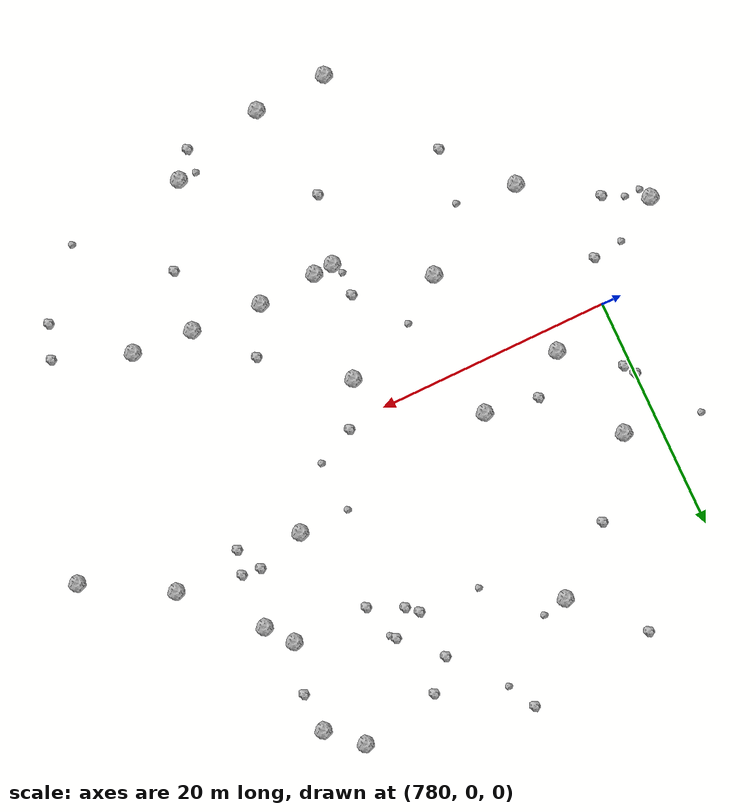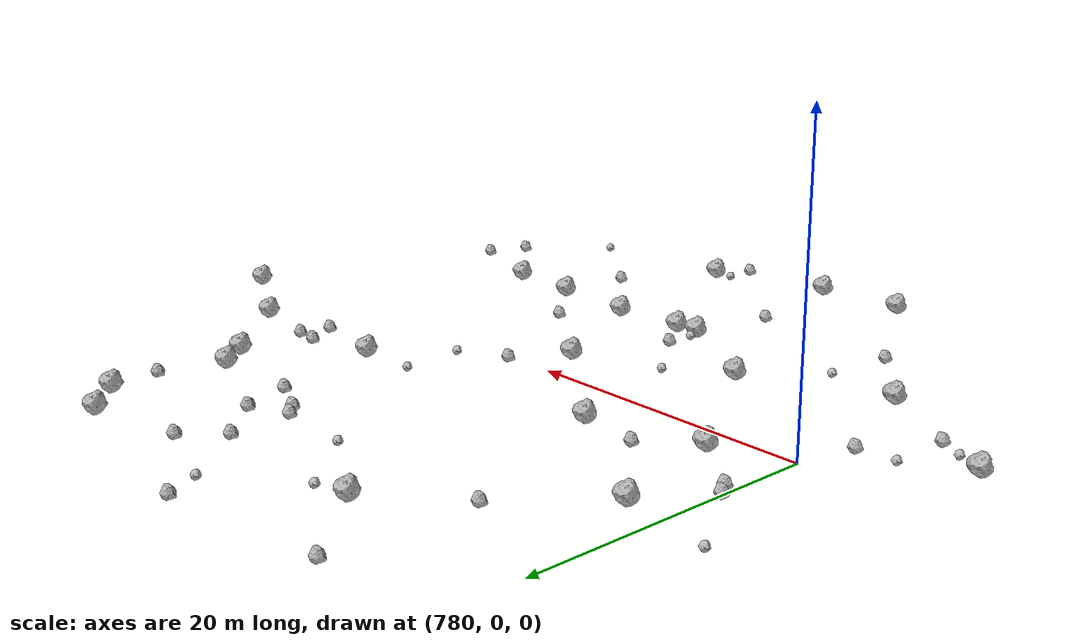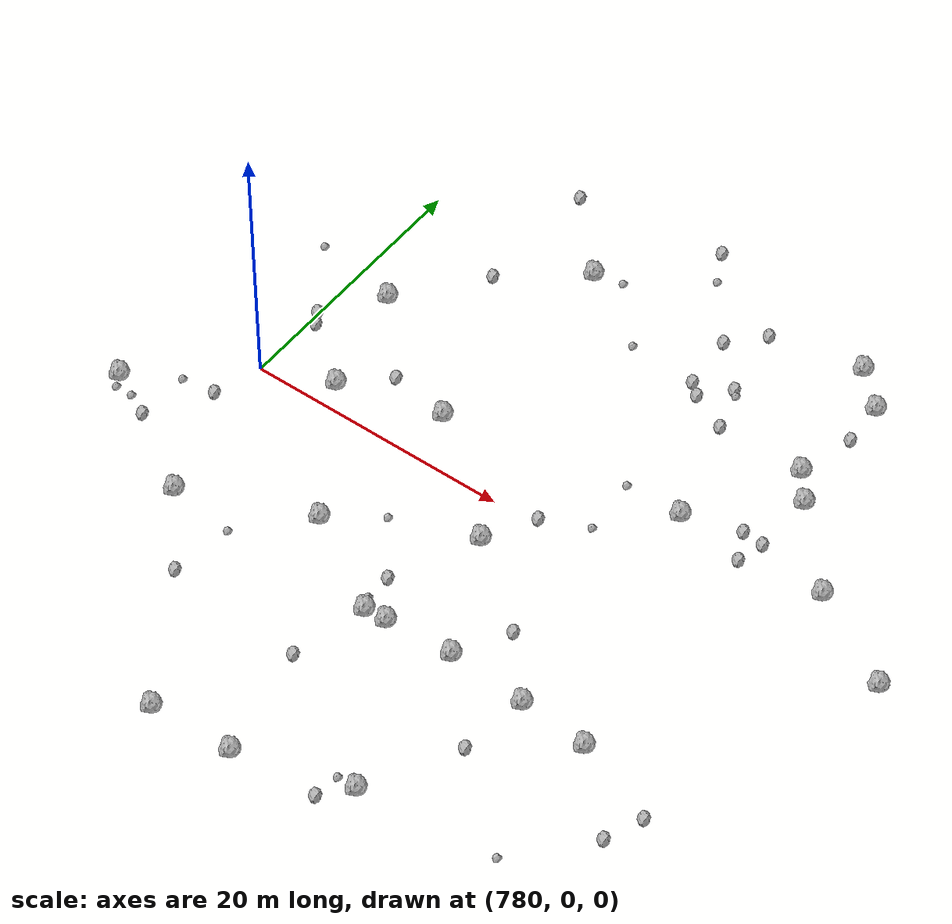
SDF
<sdf version="1.6">
 <world name="default">
  <include><uri>model://sun</uri></include>
  <model name="rock1_20_4">
   <include><uri>model://rock1</uri><pose>801.2873072578556 -3.220951974820391 0.5 0 0 0</pose></include>
  </model>
  <model name="rock1_20_5">
   <include><uri>model://rock1</uri><pose>791.5857558308367 -8.156752946767178 0.5 0 0 0</pose></include>
  </model>
  <model name="rock1_20_6">
   <include><uri>model://rock1</uri><pose>800.4947093989882 -12.434052844356128 0.5 0 0 0</pose></include>
  </model>
  <model name="rock1_20_7">
   <include><uri>model://rock1</uri><pose>805.5798699780303 -12.102232864221431 0.5 0 0 0</pose></include>
  </model>
  <model name="rock1_20_8">
   <include><uri>model://rock1</uri><pose>792.7626805686768 -26.941547479503143 0.5 0 0 0</pose></include>
  </model>
  <model name="rock1_20_9">
   <include><uri>model://rock1</uri><pose>793.1831807903321 20.65994147898806 0.5 0 0 0</pose></include>
  </model>
  <model name="rock1_20_10">
   <include><uri>model://rock1</uri><pose>782.2896090351219 -12.054138161043085 0.5 0 0 0</pose></include>
  </model>
  <model name="rock1_20_11">
   <include><uri>model://rock1</uri><pose>772.7097761068911 -6.355867970322969 0.5 0 0 0</pose></include>
  </model>
  <model name="rock1_20_12">
   <include><uri>model://rock1</uri><pose>785.0836750338036 1.8567389888149428 0.5 0 0 0</pose></include>
  </model>
  <model name="rock1_20_13">
   <include><uri>model://rock1</uri><pose>816.6455876822916 12.210533406958668 0.5 0 0 0</pose></include>
  </model>
  <model name="rock1_20_14">
   <include><uri>model://rock1</uri><pose>811.5968163612755 -12.513613989533695 0.5 0 0 0</pose></include>
  </model>
  <model name="rock1_20_15">
   <include><uri>model://rock1</uri><pose>829.0964557578304 2.3667277953648878 0.5 0 0 0</pose></include>
  </model>
  <model name="rock1_20_16">
   <include><uri>model://rock1</uri><pose>807.2863558496017 -24.22560367217298 0.5 0 0 0</pose></include>
  </model>
  <model name="rock1_20_17">
   <include><uri>model://rock1</uri><pose>810.659254233874 6.3888685827005744 0.5 0 0 0</pose></include>
  </model>
  <model name="rock1_20_18">
   <include><uri>model://rock1</uri><pose>782.9826528462528 10.333750544513599 0.5 0 0 0</pose></include>
  </model>
  <model name="rock1_20_19">
   <include><uri>model://rock1</uri><pose>816.8165728193012 -12.916499489677044 0.5 0 0 0</pose></include>
  </model>
  <model name="rock1_20_20">
   <include><uri>model://rock1</uri><pose>821.9831320202345 6.449855241724265 0.5 0 0 0</pose></include>
  </model>
  <model name="rock1_20_21">
   <include><uri>model://rock1</uri><pose>813.2185242906169 24.490597600129306 0.5 0 0 0</pose></include>
  </model>
  <model name="rock1_20_22">
   <include><uri>model://rock1</uri><pose>798.8093887175354 -12.538822701193503 0.5 0 0 0</pose></include>
  </model>
  <model name="rock1_20_23">
   <include><uri>model://rock1</uri><pose>799.0342927907318 -26.67465299741448 0.5 0 0 0</pose></include>
  </model>
  <model name="rock1_20_24">
   <include><uri>model://rock1</uri><pose>792.6673132915784 3.93650280036492 0.5 0 0 0</pose></include>
  </model>
  <model name="rock1_20_25">
   <include><uri>model://rock1</uri><pose>815.8923599474474 21.98751811751643 0.5 0 0 0</pose></include>
  </model>
  <model name="rock1_20_26">
   <include><uri>model://rock1</uri><pose>814.949751332376 14.355462906832024 0.5 0 0 0</pose></include>
  </model>
  <model name="rock2_20_0">
   <include><uri>model://rock2</uri><pose>788.0728786082996 26.085139016016228 0.3 0 0 0</pose></include>
  </model>
  <model name="rock2_20_1">
   <include><uri>model://rock2</uri><pose>805.4460139626715 15.70038718153819 0.3 0 0 0</pose></include>
  </model>
  <model name="rock2_20_2">
   <include><uri>model://rock2</uri><pose>815.9567593522086 5.496034657066367 0.3 0 0 0</pose></include>
  </model>
  <model name="rock2_20_3">
   <include><uri>model://rock2</uri><pose>787.6806756451637 16.267240835570618 0.3 0 0 0</pose></include>
  </model>
  <model name="rock2_20_4">
   <include><uri>model://rock2</uri><pose>778.9788581164527 -3.7709069475918717 0.3 0 0 0</pose></include>
  </model>
  <model name="rock2_20_5">
   <include><uri>model://rock2</uri><pose>804.139772813452 20.78804500453326 0.3 0 0 0</pose></include>
  </model>
  <model name="rock2_20_6">
   <include><uri>model://rock2</uri><pose>816.065424968218 18.640816951671944 0.3 0 0 0</pose></include>
  </model>
  <model name="rock2_20_7">
   <include><uri>model://rock2</uri><pose>799.2353249929297 27.65173345118062 0.3 0 0 0</pose></include>
  </model>
  <model name="rock2_20_8">
   <include><uri>model://rock2</uri><pose>807.7127400621159 -8.230429578204742 0.3 0 0 0</pose></include>
  </model>
  <model name="rock2_20_9">
   <include><uri>model://rock2</uri><pose>776.2625985832191 -8.169659329430026 0.3 0 0 0</pose></include>
  </model>
  <model name="rock2_20_10">
   <include><uri>model://rock2</uri><pose>807.2103641848402 17.682861094112155 0.3 0 0 0</pose></include>
  </model>
  <model name="rock2_20_11">
   <include><uri>model://rock2</uri><pose>798.4201058220751 -9.54071587950196 0.3 0 0 0</pose></include>
  </model>
  <model name="rock2_20_12">
   <include><uri>model://rock2</uri><pose>780.5853433091457 5.343613684848336 0.3 0 0 0</pose></include>
  </model>
  <model name="rock2_20_13">
   <include><uri>model://rock2</uri><pose>816.4922748578174 7.531246141281386 0.3 0 0 0</pose></include>
  </model>
  <model name="rock2_20_14">
   <include><uri>model://rock2</uri><pose>786.7726171318455 -17.36661169903647 0.3 0 0 0</pose></include>
  </model>
  <model name="rock2_20_15">
   <include><uri>model://rock2</uri><pose>814.8543787059557 7.681951680246492 0.3 0 0 0</pose></include>
  </model>
  <model name="rock2_20_16">
   <include><uri>model://rock2</uri><pose>797.4043149484801 -18.2202991362792 0.3 0 0 0</pose></include>
  </model>
  <model name="rock2_20_17">
   <include><uri>model://rock2</uri><pose>805.5657944050988 -26.203855435837998 0.3 0 0 0</pose></include>
  </model>
  <model name="rock2_20_18">
   <include><uri>model://rock2</uri><pose>806.3128890187257 23.16995719361811 0.3 0 0 0</pose></include>
  </model>
  <model name="rock2_20_19">
   <include><uri>model://rock2</uri><pose>779.9757124806653 6.280015393702641 0.3 0 0 0</pose></include>
  </model>
  <model name="rock2_20_20">
   <include><uri>model://rock2</uri><pose>822.0610415646735 -18.046780133772753 0.3 0 0 0</pose></include>
  </model>
  <model name="rock2_20_21">
   <include><uri>model://rock2</uri><pose>810.8519899080991 -17.577647242782184 0.3 0 0 0</pose></include>
  </model>
  <model name="rock2_20_22">
   <include><uri>model://rock2</uri><pose>788.062969746568 4.717740044909505 0.3 0 0 0</pose></include>
  </model>
  <model name="rock2_20_23">
   <include><uri>model://rock2</uri><pose>803.3127547178614 0.4369440038612993 0.3 0 0 0</pose></include>
  </model>
  <model name="rock2_20_24">
   <include><uri>model://rock2</uri><pose>804.5184702590241 16.534129549631103 0.3 0 0 0</pose></include>
  </model>
  <model name="rock2_20_25">
   <include><uri>model://rock2</uri><pose>808.3403161257002 14.323086372823688 0.3 0 0 0</pose></include>
  </model>
  <model name="rock2_20_26">
   <include><uri>model://rock2</uri><pose>823.1540737349942 -15.260631172824011 0.3 0 0 0</pose></include>
  </model>
  <model name="rock3_20_0">
   <include><uri>model://rock3</uri><pose>806.5787875276096 1.9666383024405931 0.2 0 0 0</pose></include>
  </model>
  <model name="rock3_20_1">
   <include><uri>model://rock3</uri><pose>776.4182331932384 11.517655907864835 0.2 0 0 0</pose></include>
  </model>
  <model name="rock3_20_2">
   <include><uri>model://rock3</uri><pose>776.3810789067882 -4.094166227384271 0.2 0 0 0</pose></include>
  </model>
  <model name="rock3_20_3">
   <include><uri>model://rock3</uri><pose>795.3053374143249 21.156077971487413 0.2 0 0 0</pose></include>
  </model>
  <model name="rock3_20_4">
   <include><uri>model://rock3</uri><pose>795.1989394431151 -5.433630383954583 0.2 0 0 0</pose></include>
  </model>
  <model name="rock3_20_5">
   <include><uri>model://rock3</uri><pose>817.5286245454757 -23.17419946260449 0.2 0 0 0</pose></include>
  </model>
  <model name="rock3_20_6">
   <include><uri>model://rock3</uri><pose>787.3861131091859 -12.718250851763514 0.2 0 0 0</pose></include>
  </model>
  <model name="rock3_20_7">
   <include><uri>model://rock3</uri><pose>800.4621218921868 25.23067012592405 0.2 0 0 0</pose></include>
  </model>
  <model name="rock3_20_8">
   <include><uri>model://rock3</uri><pose>807.5536554705278 17.263928870931004 0.2 0 0 0</pose></include>
  </model>
  <model name="rock3_20_9">
   <include><uri>model://rock3</uri><pose>773.1859003722309 -7.325980213062223 0.2 0 0 0</pose></include>
  </model>
  <model name="rock3_20_10">
   <include><uri>model://rock3</uri><pose>799.2455568911265 16.809790838980213 0.2 0 0 0</pose></include>
  </model>
  <model name="rock3_20_11">
   <include><uri>model://rock3</uri><pose>806.2724643169907 6.340956242355965 0.2 0 0 0</pose></include>
  </model>
  <model name="rock3_20_12">
   <include><uri>model://rock3</uri><pose>798.3236796889353 -11.573119756282594 0.2 0 0 0</pose></include>
  </model>
  <model name="rock3_20_13">
   <include><uri>model://rock3</uri><pose>774.521492923076 -7.322233794945024 0.2 0 0 0</pose></include>
  </model>
  <model name="rock3_20_14">
   <include><uri>model://rock3</uri><pose>805.7403693394249 -24.215034266785658 0.2 0 0 0</pose></include>
  </model>
 </world>
</sdf>
